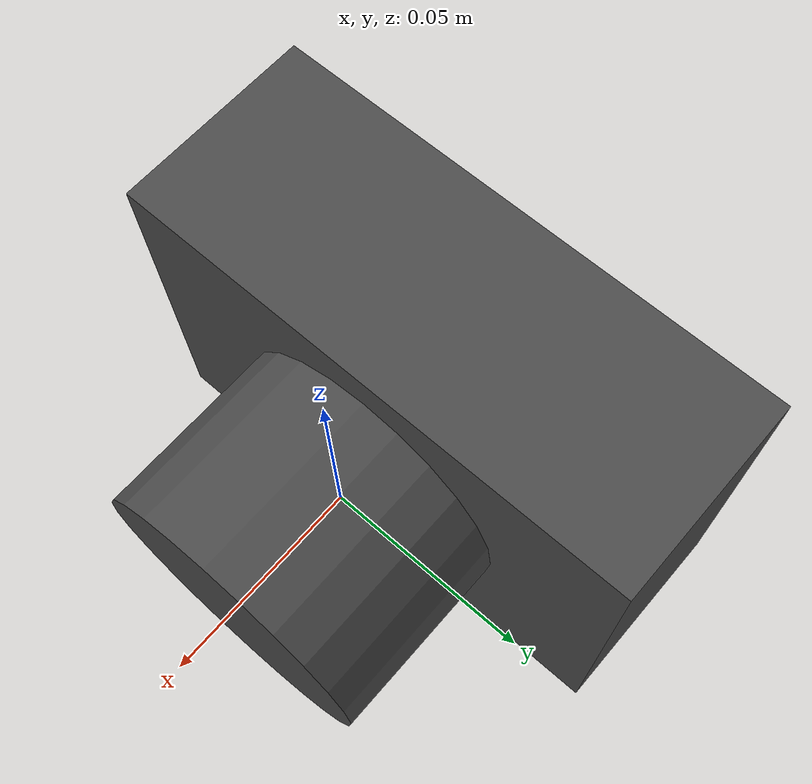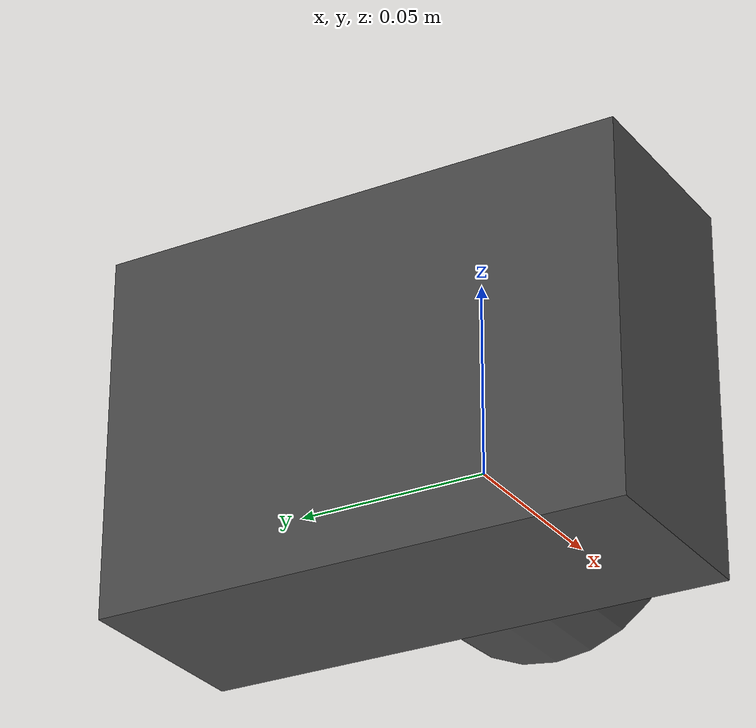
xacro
<?xml version="1.0"?>
<robot name="static_camera" xmlns:xacro="http://ros.org/wiki/xacro">
  <xacro:include filename="$(find fg_gazebo_example)/urdf/camera_macro.xacro" />

  <!-- Root link for the standalone camera; spawn pose is set via `ros_gz_sim create -x -y -z -R -P -Y` -->
  <link name="static_camera_base">
    <inertial>
      <mass value="1e-3" />
      <origin xyz="0 0 0" />
      <inertia ixx="1e-6" ixy="0" ixz="0" iyy="1e-6" iyz="0" izz="1e-6" />
    </inertial>
  </link>

  <xacro:fg_camera name="static_camera" camera_type="camera" parent="static_camera_base"
                    far_clip="30.0" fov="1.4">
    <origin xyz="0 0 0" rpy="0 0 0" />
  </xacro:fg_camera>

  <!-- Not part of the robot's URDF, so it doesn't need to move with anything -->
  <gazebo>
    <static>true</static>
  </gazebo>
</robot>

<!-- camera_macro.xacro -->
<robot xmlns:xacro="http://ros.org/wiki/xacro">
  <material name="darkgrey">
    <color rgba="0.3 0.3 0.3 1.0" />
  </material>

  <xacro:macro name="fg_camera" params="name camera_type parent far_clip:=1.2 fov:=1.047 *origin">
    <joint name="${name}_joint" type="fixed">
      <xacro:insert_block name="origin" />
      <parent link="${parent}" />
      <child link="${name}_link" />
    </joint>

    <link name="${name}_link">
      <visual>
        <origin xyz="0 0 0" rpy="0 ${pi/2} 0" />
        <geometry>
          <cylinder radius="0.035" length="0.07" />
        </geometry>
        <material name="darkgrey" />
      </visual>
      <visual>
        <origin xyz="-0.035 0 0" rpy="0 0 0" />
        <geometry>
          <box size="0.05 0.13 0.09" />
        </geometry>
        <material name="darkgrey" />
      </visual>
      <collision>
        <origin xyz="0 0 0" rpy="0 ${pi/2} 0" />
        <geometry>
          <cylinder radius="0.035" length="0.07" />
        </geometry>
      </collision>
      <inertial>
        <mass value="0.05" />
        <origin xyz="0 0 0" />
        <inertia ixx="1e-5" ixy="0" ixz="0" iyy="1e-5" iyz="0" izz="1e-5" />
      </inertial>
    </link>

    <joint name="${name}_optical_joint" type="fixed">
      <origin xyz="0 0 0" rpy="${-pi/2} 0 ${-pi/2}" />
      <parent link="${name}_link" />
      <child link="${name}_optical_frame" />
    </joint>
    <link name="${name}_optical_frame" />

    <gazebo reference="${name}_link">
      <material>Gazebo/DarkGrey</material>
      <sensor name="${name}" type="${camera_type}">
        <always_on>true</always_on>
        <update_rate>15</update_rate>
        <visualize>true</visualize>
        <topic>${name}</topic>
        <gz_frame_id>${name}_optical_frame</gz_frame_id>
        <camera>
          <horizontal_fov>${fov}</horizontal_fov>
          <image>
            <width>640</width>
            <height>480</height>
          </image>
          <clip>
            <near>0.05</near>
            <far>${far_clip}</far>
          </clip>
        </camera>
      </sensor>
    </gazebo>
  </xacro:macro>
</robot>
